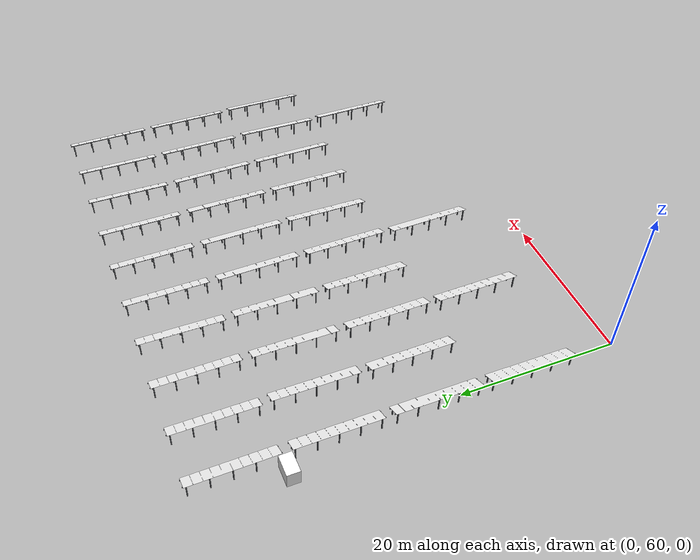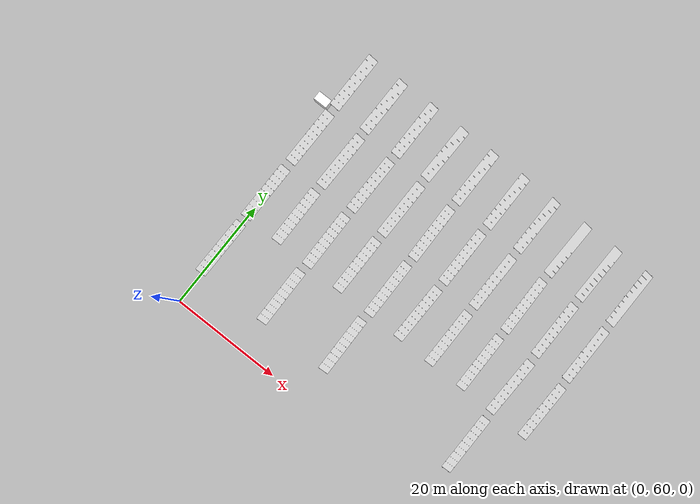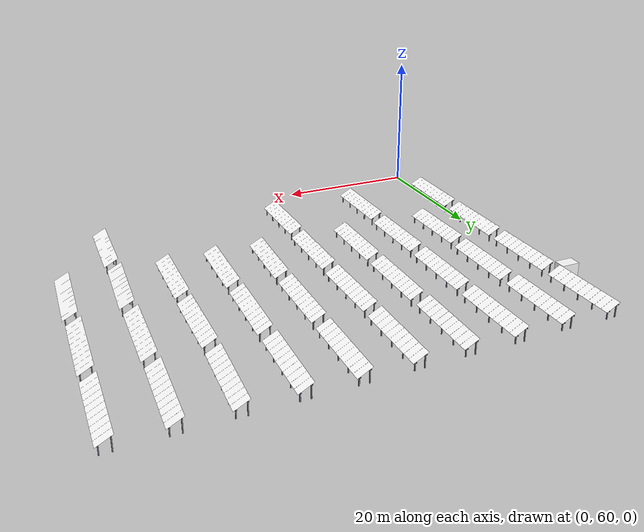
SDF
<sdf version="1.10">
 <world name="solar_farm">
  <model name="table_0006">
   <static>true</static>
   <pose>-0.049 71.330 0 0 0 -0.00557</pose>
   <link name="table">
    <collision name="glass_col">
     <pose>0 0 1.6 0 0.488692 0</pose>
     <geometry><box><size>2.100 10.680 0.040</size></box></geometry>
    </collision>
    <visual name="glass">
     <pose>0 0 1.6 0 0.488692 0</pose>
     <geometry><mesh><uri>model://solar_farm_assets/meshes/pv_glass.obj</uri></mesh></geometry>
     <material>
      <ambient>0.25 0.25 0.25 1</ambient>
      <diffuse>1 1 1 1</diffuse>
      <specular>0.4 0.4 0.4 1</specular>
      <pbr>
       <metal>
        <albedo_map>model://solar_farm_assets/materials/textures/pv_atlas_04_albedo.png</albedo_map>
        <roughness_map>model://solar_farm_assets/materials/textures/pv_atlas_04_roughness.png</roughness_map>
        <normal_map>model://solar_farm_assets/materials/textures/pv_normal.png</normal_map>
        <metalness>0.1</metalness>
       </metal>
      </pbr>
     </material>
    </visual>
    <visual name="rack">
     <cast_shadows>false</cast_shadows>
     <geometry><mesh><uri>model://solar_farm_assets/meshes/pv_rack.obj</uri></mesh></geometry>
     <material>
      <ambient>0.18 0.18 0.20 1</ambient>
      <diffuse>0.40 0.41 0.43 1</diffuse>
      <specular>0.5 0.5 0.5 1</specular>
      <pbr><metal><roughness>0.45</roughness><metalness>0.85</metalness></metal></pbr>
     </material>
    </visual>
   </link>
  </model>
  <model name="table_0007">
   <static>true</static>
   <pose>-0.022 83.192 0 0 0 0.00090</pose>
   <link name="table">
    <collision name="glass_col">
     <pose>0 0 1.6 0 0.488692 0</pose>
     <geometry><box><size>2.100 10.680 0.040</size></box></geometry>
    </collision>
    <visual name="glass">
     <pose>0 0 1.6 0 0.488692 0</pose>
     <geometry><mesh><uri>model://solar_farm_assets/meshes/pv_glass.obj</uri></mesh></geometry>
     <material>
      <ambient>0.25 0.25 0.25 1</ambient>
      <diffuse>1 1 1 1</diffuse>
      <specular>0.4 0.4 0.4 1</specular>
      <pbr>
       <metal>
        <albedo_map>model://solar_farm_assets/materials/textures/pv_atlas_00_albedo.png</albedo_map>
        <roughness_map>model://solar_farm_assets/materials/textures/pv_atlas_00_roughness.png</roughness_map>
        <normal_map>model://solar_farm_assets/materials/textures/pv_normal.png</normal_map>
        <metalness>0.1</metalness>
       </metal>
      </pbr>
     </material>
    </visual>
    <visual name="rack">
     <cast_shadows>false</cast_shadows>
     <geometry><mesh><uri>model://solar_farm_assets/meshes/pv_rack.obj</uri></mesh></geometry>
     <material>
      <ambient>0.18 0.18 0.20 1</ambient>
      <diffuse>0.40 0.41 0.43 1</diffuse>
      <specular>0.5 0.5 0.5 1</specular>
      <pbr><metal><roughness>0.45</roughness><metalness>0.85</metalness></metal></pbr>
     </material>
    </visual>
   </link>
  </model>
  <model name="table_0008">
   <static>true</static>
   <pose>-0.014 95.056 0 0 0 0.00251</pose>
   <link name="table">
    <collision name="glass_col">
     <pose>0 0 1.6 0 0.488692 0</pose>
     <geometry><box><size>2.100 10.680 0.040</size></box></geometry>
    </collision>
    <visual name="glass">
     <pose>0 0 1.6 0 0.488692 0</pose>
     <geometry><mesh><uri>model://solar_farm_assets/meshes/pv_glass.obj</uri></mesh></geometry>
     <material>
      <ambient>0.25 0.25 0.25 1</ambient>
      <diffuse>1 1 1 1</diffuse>
      <specular>0.4 0.4 0.4 1</specular>
      <pbr>
       <metal>
        <albedo_map>model://solar_farm_assets/materials/textures/pv_atlas_09_albedo.png</albedo_map>
        <roughness_map>model://solar_farm_assets/materials/textures/pv_atlas_09_roughness.png</roughness_map>
        <normal_map>model://solar_farm_assets/materials/textures/pv_normal.png</normal_map>
        <metalness>0.1</metalness>
       </metal>
      </pbr>
     </material>
    </visual>
    <visual name="rack">
     <cast_shadows>false</cast_shadows>
     <geometry><mesh><uri>model://solar_farm_assets/meshes/pv_rack.obj</uri></mesh></geometry>
     <material>
      <ambient>0.18 0.18 0.20 1</ambient>
      <diffuse>0.40 0.41 0.43 1</diffuse>
      <specular>0.5 0.5 0.5 1</specular>
      <pbr><metal><roughness>0.45</roughness><metalness>0.85</metalness></metal></pbr>
     </material>
    </visual>
   </link>
  </model>
  <model name="table_0009">
   <static>true</static>
   <pose>-0.078 106.938 0 0 0 0.01003</pose>
   <link name="table">
    <collision name="glass_col">
     <pose>0 0 1.6 0 0.488692 0</pose>
     <geometry><box><size>2.100 10.680 0.040</size></box></geometry>
    </collision>
    <visual name="glass">
     <pose>0 0 1.6 0 0.488692 0</pose>
     <geometry><mesh><uri>model://solar_farm_assets/meshes/pv_glass.obj</uri></mesh></geometry>
     <material>
      <ambient>0.25 0.25 0.25 1</ambient>
      <diffuse>1 1 1 1</diffuse>
      <specular>0.4 0.4 0.4 1</specular>
      <pbr>
       <metal>
        <albedo_map>model://solar_farm_assets/materials/textures/pv_atlas_10_albedo.png</albedo_map>
        <roughness_map>model://solar_farm_assets/materials/textures/pv_atlas_10_roughness.png</roughness_map>
        <normal_map>model://solar_farm_assets/materials/textures/pv_normal.png</normal_map>
        <metalness>0.1</metalness>
       </metal>
      </pbr>
     </material>
    </visual>
    <visual name="rack">
     <cast_shadows>false</cast_shadows>
     <geometry><mesh><uri>model://solar_farm_assets/meshes/pv_rack.obj</uri></mesh></geometry>
     <material>
      <ambient>0.18 0.18 0.20 1</ambient>
      <diffuse>0.40 0.41 0.43 1</diffuse>
      <specular>0.5 0.5 0.5 1</specular>
      <pbr><metal><roughness>0.45</roughness><metalness>0.85</metalness></metal></pbr>
     </material>
    </visual>
   </link>
  </model>
  <model name="table_0017">
   <static>true</static>
   <pose>6.461 83.219 0 0 0 0.01231</pose>
   <link name="table">
    <collision name="glass_col">
     <pose>0 0 1.6 0 0.488692 0</pose>
     <geometry><box><size>2.100 10.680 0.040</size></box></geometry>
    </collision>
    <visual name="glass">
     <pose>0 0 1.6 0 0.488692 0</pose>
     <geometry><mesh><uri>model://solar_farm_assets/meshes/pv_glass.obj</uri></mesh></geometry>
     <material>
      <ambient>0.25 0.25 0.25 1</ambient>
      <diffuse>1 1 1 1</diffuse>
      <specular>0.4 0.4 0.4 1</specular>
      <pbr>
       <metal>
        <albedo_map>model://solar_farm_assets/materials/textures/pv_atlas_02_albedo.png</albedo_map>
        <roughness_map>model://solar_farm_assets/materials/textures/pv_atlas_02_roughness.png</roughness_map>
        <normal_map>model://solar_farm_assets/materials/textures/pv_normal.png</normal_map>
        <metalness>0.1</metalness>
       </metal>
      </pbr>
     </material>
    </visual>
    <visual name="rack">
     <cast_shadows>false</cast_shadows>
     <geometry><mesh><uri>model://solar_farm_assets/meshes/pv_rack.obj</uri></mesh></geometry>
     <material>
      <ambient>0.18 0.18 0.20 1</ambient>
      <diffuse>0.40 0.41 0.43 1</diffuse>
      <specular>0.5 0.5 0.5 1</specular>
      <pbr><metal><roughness>0.45</roughness><metalness>0.85</metalness></metal></pbr>
     </material>
    </visual>
   </link>
  </model>
  <model name="table_0018">
   <static>true</static>
   <pose>6.539 95.059 0 0 0 -0.00374</pose>
   <link name="table">
    <collision name="glass_col">
     <pose>0 0 1.6 0 0.488692 0</pose>
     <geometry><box><size>2.100 10.680 0.040</size></box></geometry>
    </collision>
    <visual name="glass">
     <pose>0 0 1.6 0 0.488692 0</pose>
     <geometry><mesh><uri>model://solar_farm_assets/meshes/pv_glass.obj</uri></mesh></geometry>
     <material>
      <ambient>0.25 0.25 0.25 1</ambient>
      <diffuse>1 1 1 1</diffuse>
      <specular>0.4 0.4 0.4 1</specular>
      <pbr>
       <metal>
        <albedo_map>model://solar_farm_assets/materials/textures/pv_atlas_19_albedo.png</albedo_map>
        <roughness_map>model://solar_farm_assets/materials/textures/pv_atlas_19_roughness.png</roughness_map>
        <normal_map>model://solar_farm_assets/materials/textures/pv_normal.png</normal_map>
        <metalness>0.1</metalness>
       </metal>
      </pbr>
     </material>
    </visual>
    <visual name="rack">
     <cast_shadows>false</cast_shadows>
     <geometry><mesh><uri>model://solar_farm_assets/meshes/pv_rack.obj</uri></mesh></geometry>
     <material>
      <ambient>0.18 0.18 0.20 1</ambient>
      <diffuse>0.40 0.41 0.43 1</diffuse>
      <specular>0.5 0.5 0.5 1</specular>
      <pbr><metal><roughness>0.45</roughness><metalness>0.85</metalness></metal></pbr>
     </material>
    </visual>
   </link>
  </model>
  <model name="table_0019">
   <static>true</static>
   <pose>6.405 106.849 0 0 0 0.00211</pose>
   <link name="table">
    <collision name="glass_col">
     <pose>0 0 1.6 0 0.488692 0</pose>
     <geometry><box><size>2.100 10.680 0.040</size></box></geometry>
    </collision>
    <visual name="glass">
     <pose>0 0 1.6 0 0.488692 0</pose>
     <geometry><mesh><uri>model://solar_farm_assets/meshes/pv_glass.obj</uri></mesh></geometry>
     <material>
      <ambient>0.25 0.25 0.25 1</ambient>
      <diffuse>1 1 1 1</diffuse>
      <specular>0.4 0.4 0.4 1</specular>
      <pbr>
       <metal>
        <albedo_map>model://solar_farm_assets/materials/textures/pv_atlas_15_albedo.png</albedo_map>
        <roughness_map>model://solar_farm_assets/materials/textures/pv_atlas_15_roughness.png</roughness_map>
        <normal_map>model://solar_farm_assets/materials/textures/pv_normal.png</normal_map>
        <metalness>0.1</metalness>
       </metal>
      </pbr>
     </material>
    </visual>
    <visual name="rack">
     <cast_shadows>false</cast_shadows>
     <geometry><mesh><uri>model://solar_farm_assets/meshes/pv_rack.obj</uri></mesh></geometry>
     <material>
      <ambient>0.18 0.18 0.20 1</ambient>
      <diffuse>0.40 0.41 0.43 1</diffuse>
      <specular>0.5 0.5 0.5 1</specular>
      <pbr><metal><roughness>0.45</roughness><metalness>0.85</metalness></metal></pbr>
     </material>
    </visual>
   </link>
  </model>
  <model name="table_0026">
   <static>true</static>
   <pose>12.920 71.297 0 0 0 0.01372</pose>
   <link name="table">
    <collision name="glass_col">
     <pose>0 0 1.6 0 0.488692 0</pose>
     <geometry><box><size>2.100 10.680 0.040</size></box></geometry>
    </collision>
    <visual name="glass">
     <pose>0 0 1.6 0 0.488692 0</pose>
     <geometry><mesh><uri>model://solar_farm_assets/meshes/pv_glass.obj</uri></mesh></geometry>
     <material>
      <ambient>0.25 0.25 0.25 1</ambient>
      <diffuse>1 1 1 1</diffuse>
      <specular>0.4 0.4 0.4 1</specular>
      <pbr>
       <metal>
        <albedo_map>model://solar_farm_assets/materials/textures/pv_atlas_10_albedo.png</albedo_map>
        <roughness_map>model://solar_farm_assets/materials/textures/pv_atlas_10_roughness.png</roughness_map>
        <normal_map>model://solar_farm_assets/materials/textures/pv_normal.png</normal_map>
        <metalness>0.1</metalness>
       </metal>
      </pbr>
     </material>
    </visual>
    <visual name="rack">
     <cast_shadows>false</cast_shadows>
     <geometry><mesh><uri>model://solar_farm_assets/meshes/pv_rack.obj</uri></mesh></geometry>
     <material>
      <ambient>0.18 0.18 0.20 1</ambient>
      <diffuse>0.40 0.41 0.43 1</diffuse>
      <specular>0.5 0.5 0.5 1</specular>
      <pbr><metal><roughness>0.45</roughness><metalness>0.85</metalness></metal></pbr>
     </material>
    </visual>
   </link>
  </model>
  <model name="table_0027">
   <static>true</static>
   <pose>12.981 83.192 0 0 0 0.01291</pose>
   <link name="table">
    <collision name="glass_col">
     <pose>0 0 1.6 0 0.488692 0</pose>
     <geometry><box><size>2.100 10.680 0.040</size></box></geometry>
    </collision>
    <visual name="glass">
     <pose>0 0 1.6 0 0.488692 0</pose>
     <geometry><mesh><uri>model://solar_farm_assets/meshes/pv_glass.obj</uri></mesh></geometry>
     <material>
      <ambient>0.25 0.25 0.25 1</ambient>
      <diffuse>1 1 1 1</diffuse>
      <specular>0.4 0.4 0.4 1</specular>
      <pbr>
       <metal>
        <albedo_map>model://solar_farm_assets/materials/textures/pv_atlas_19_albedo.png</albedo_map>
        <roughness_map>model://solar_farm_assets/materials/textures/pv_atlas_19_roughness.png</roughness_map>
        <normal_map>model://solar_farm_assets/materials/textures/pv_normal.png</normal_map>
        <metalness>0.1</metalness>
       </metal>
      </pbr>
     </material>
    </visual>
    <visual name="rack">
     <cast_shadows>false</cast_shadows>
     <geometry><mesh><uri>model://solar_farm_assets/meshes/pv_rack.obj</uri></mesh></geometry>
     <material>
      <ambient>0.18 0.18 0.20 1</ambient>
      <diffuse>0.40 0.41 0.43 1</diffuse>
      <specular>0.5 0.5 0.5 1</specular>
      <pbr><metal><roughness>0.45</roughness><metalness>0.85</metalness></metal></pbr>
     </material>
    </visual>
   </link>
  </model>
  <model name="table_0028">
   <static>true</static>
   <pose>12.994 95.047 0 0 0 0.00016</pose>
   <link name="table">
    <collision name="glass_col">
     <pose>0 0 1.6 0 0.488692 0</pose>
     <geometry><box><size>2.100 10.680 0.040</size></box></geometry>
    </collision>
    <visual name="glass">
     <pose>0 0 1.6 0 0.488692 0</pose>
     <geometry><mesh><uri>model://solar_farm_assets/meshes/pv_glass.obj</uri></mesh></geometry>
     <material>
      <ambient>0.25 0.25 0.25 1</ambient>
      <diffuse>1 1 1 1</diffuse>
      <specular>0.4 0.4 0.4 1</specular>
      <pbr>
       <metal>
        <albedo_map>model://solar_farm_assets/materials/textures/pv_atlas_13_albedo.png</albedo_map>
        <roughness_map>model://solar_farm_assets/materials/textures/pv_atlas_13_roughness.png</roughness_map>
        <normal_map>model://solar_farm_assets/materials/textures/pv_normal.png</normal_map>
        <metalness>0.1</metalness>
       </metal>
      </pbr>
     </material>
    </visual>
    <visual name="rack">
     <cast_shadows>false</cast_shadows>
     <geometry><mesh><uri>model://solar_farm_assets/meshes/pv_rack.obj</uri></mesh></geometry>
     <material>
      <ambient>0.18 0.18 0.20 1</ambient>
      <diffuse>0.40 0.41 0.43 1</diffuse>
      <specular>0.5 0.5 0.5 1</specular>
      <pbr><metal><roughness>0.45</roughness><metalness>0.85</metalness></metal></pbr>
     </material>
    </visual>
   </link>
  </model>
  <model name="table_0029">
   <static>true</static>
   <pose>13.030 106.926 0 0 0 0.00944</pose>
   <link name="table">
    <collision name="glass_col">
     <pose>0 0 1.6 0 0.488692 0</pose>
     <geometry><box><size>2.100 10.680 0.040</size></box></geometry>
    </collision>
    <visual name="glass">
     <pose>0 0 1.6 0 0.488692 0</pose>
     <geometry><mesh><uri>model://solar_farm_assets/meshes/pv_glass.obj</uri></mesh></geometry>
     <material>
      <ambient>0.25 0.25 0.25 1</ambient>
      <diffuse>1 1 1 1</diffuse>
      <specular>0.4 0.4 0.4 1</specular>
      <pbr>
       <metal>
        <albedo_map>model://solar_farm_assets/materials/textures/pv_atlas_03_albedo.png</albedo_map>
        <roughness_map>model://solar_farm_assets/materials/textures/pv_atlas_03_roughness.png</roughness_map>
        <normal_map>model://solar_farm_assets/materials/textures/pv_normal.png</normal_map>
        <metalness>0.1</metalness>
       </metal>
      </pbr>
     </material>
    </visual>
    <visual name="rack">
     <cast_shadows>false</cast_shadows>
     <geometry><mesh><uri>model://solar_farm_assets/meshes/pv_rack.obj</uri></mesh></geometry>
     <material>
      <ambient>0.18 0.18 0.20 1</ambient>
      <diffuse>0.40 0.41 0.43 1</diffuse>
      <specular>0.5 0.5 0.5 1</specular>
      <pbr><metal><roughness>0.45</roughness><metalness>0.85</metalness></metal></pbr>
     </material>
    </visual>
   </link>
  </model>
  <model name="table_0037">
   <static>true</static>
   <pose>19.538 83.201 0 0 0 0.00400</pose>
   <link name="table">
    <collision name="glass_col">
     <pose>0 0 1.6 0 0.488692 0</pose>
     <geometry><box><size>2.100 10.680 0.040</size></box></geometry>
    </collision>
    <visual name="glass">
     <pose>0 0 1.6 0 0.488692 0</pose>
     <geometry><mesh><uri>model://solar_farm_assets/meshes/pv_glass.obj</uri></mesh></geometry>
     <material>
      <ambient>0.25 0.25 0.25 1</ambient>
      <diffuse>1 1 1 1</diffuse>
      <specular>0.4 0.4 0.4 1</specular>
      <pbr>
       <metal>
        <albedo_map>model://solar_farm_assets/materials/textures/pv_atlas_09_albedo.png</albedo_map>
        <roughness_map>model://solar_farm_assets/materials/textures/pv_atlas_09_roughness.png</roughness_map>
        <normal_map>model://solar_farm_assets/materials/textures/pv_normal.png</normal_map>
        <metalness>0.1</metalness>
       </metal>
      </pbr>
     </material>
    </visual>
    <visual name="rack">
     <cast_shadows>false</cast_shadows>
     <geometry><mesh><uri>model://solar_farm_assets/meshes/pv_rack.obj</uri></mesh></geometry>
     <material>
      <ambient>0.18 0.18 0.20 1</ambient>
      <diffuse>0.40 0.41 0.43 1</diffuse>
      <specular>0.5 0.5 0.5 1</specular>
      <pbr><metal><roughness>0.45</roughness><metalness>0.85</metalness></metal></pbr>
     </material>
    </visual>
   </link>
  </model>
  <model name="table_0038">
   <static>true</static>
   <pose>19.542 95.015 0 0 0 -0.00127</pose>
   <link name="table">
    <collision name="glass_col">
     <pose>0 0 1.6 0 0.488692 0</pose>
     <geometry><box><size>2.100 10.680 0.040</size></box></geometry>
    </collision>
    <visual name="glass">
     <pose>0 0 1.6 0 0.488692 0</pose>
     <geometry><mesh><uri>model://solar_farm_assets/meshes/pv_glass.obj</uri></mesh></geometry>
     <material>
      <ambient>0.25 0.25 0.25 1</ambient>
      <diffuse>1 1 1 1</diffuse>
      <specular>0.4 0.4 0.4 1</specular>
      <pbr>
       <metal>
        <albedo_map>model://solar_farm_assets/materials/textures/pv_atlas_16_albedo.png</albedo_map>
        <roughness_map>model://solar_farm_assets/materials/textures/pv_atlas_16_roughness.png</roughness_map>
        <normal_map>model://solar_farm_assets/materials/textures/pv_normal.png</normal_map>
        <metalness>0.1</metalness>
       </metal>
      </pbr>
     </material>
    </visual>
    <visual name="rack">
     <cast_shadows>false</cast_shadows>
     <geometry><mesh><uri>model://solar_farm_assets/meshes/pv_rack.obj</uri></mesh></geometry>
     <material>
      <ambient>0.18 0.18 0.20 1</ambient>
      <diffuse>0.40 0.41 0.43 1</diffuse>
      <specular>0.5 0.5 0.5 1</specular>
      <pbr><metal><roughness>0.45</roughness><metalness>0.85</metalness></metal></pbr>
     </material>
    </visual>
   </link>
  </model>
  <model name="table_0039">
   <static>true</static>
   <pose>19.463 106.886 0 0 0 -0.00987</pose>
   <link name="table">
    <collision name="glass_col">
     <pose>0 0 1.6 0 0.488692 0</pose>
     <geometry><box><size>2.100 10.680 0.040</size></box></geometry>
    </collision>
    <visual name="glass">
     <pose>0 0 1.6 0 0.488692 0</pose>
     <geometry><mesh><uri>model://solar_farm_assets/meshes/pv_glass.obj</uri></mesh></geometry>
     <material>
      <ambient>0.25 0.25 0.25 1</ambient>
      <diffuse>1 1 1 1</diffuse>
      <specular>0.4 0.4 0.4 1</specular>
      <pbr>
       <metal>
        <albedo_map>model://solar_farm_assets/materials/textures/pv_atlas_02_albedo.png</albedo_map>
        <roughness_map>model://solar_farm_assets/materials/textures/pv_atlas_02_roughness.png</roughness_map>
        <normal_map>model://solar_farm_assets/materials/textures/pv_normal.png</normal_map>
        <metalness>0.1</metalness>
       </metal>
      </pbr>
     </material>
    </visual>
    <visual name="rack">
     <cast_shadows>false</cast_shadows>
     <geometry><mesh><uri>model://solar_farm_assets/meshes/pv_rack.obj</uri></mesh></geometry>
     <material>
      <ambient>0.18 0.18 0.20 1</ambient>
      <diffuse>0.40 0.41 0.43 1</diffuse>
      <specular>0.5 0.5 0.5 1</specular>
      <pbr><metal><roughness>0.45</roughness><metalness>0.85</metalness></metal></pbr>
     </material>
    </visual>
   </link>
  </model>
  <model name="table_0046">
   <static>true</static>
   <pose>25.970 71.341 0 0 0 0.01737</pose>
   <link name="table">
    <collision name="glass_col">
     <pose>0 0 1.6 0 0.488692 0</pose>
     <geometry><box><size>2.100 10.680 0.040</size></box></geometry>
    </collision>
    <visual name="glass">
     <pose>0 0 1.6 0 0.488692 0</pose>
     <geometry><mesh><uri>model://solar_farm_assets/meshes/pv_glass.obj</uri></mesh></geometry>
     <material>
      <ambient>0.25 0.25 0.25 1</ambient>
      <diffuse>1 1 1 1</diffuse>
      <specular>0.4 0.4 0.4 1</specular>
      <pbr>
       <metal>
        <albedo_map>model://solar_farm_assets/materials/textures/pv_atlas_14_albedo.png</albedo_map>
        <roughness_map>model://solar_farm_assets/materials/textures/pv_atlas_14_roughness.png</roughness_map>
        <normal_map>model://solar_farm_assets/materials/textures/pv_normal.png</normal_map>
        <metalness>0.1</metalness>
       </metal>
      </pbr>
     </material>
    </visual>
    <visual name="rack">
     <cast_shadows>false</cast_shadows>
     <geometry><mesh><uri>model://solar_farm_assets/meshes/pv_rack.obj</uri></mesh></geometry>
     <material>
      <ambient>0.18 0.18 0.20 1</ambient>
      <diffuse>0.40 0.41 0.43 1</diffuse>
      <specular>0.5 0.5 0.5 1</specular>
      <pbr><metal><roughness>0.45</roughness><metalness>0.85</metalness></metal></pbr>
     </material>
    </visual>
   </link>
  </model>
  <model name="table_0047">
   <static>true</static>
   <pose>26.081 83.234 0 0 0 0.01050</pose>
   <link name="table">
    <collision name="glass_col">
     <pose>0 0 1.6 0 0.488692 0</pose>
     <geometry><box><size>2.100 10.680 0.040</size></box></geometry>
    </collision>
    <visual name="glass">
     <pose>0 0 1.6 0 0.488692 0</pose>
     <geometry><mesh><uri>model://solar_farm_assets/meshes/pv_glass.obj</uri></mesh></geometry>
     <material>
      <ambient>0.25 0.25 0.25 1</ambient>
      <diffuse>1 1 1 1</diffuse>
      <specular>0.4 0.4 0.4 1</specular>
      <pbr>
       <metal>
        <albedo_map>model://solar_farm_assets/materials/textures/pv_atlas_04_albedo.png</albedo_map>
        <roughness_map>model://solar_farm_assets/materials/textures/pv_atlas_04_roughness.png</roughness_map>
        <normal_map>model://solar_farm_assets/materials/textures/pv_normal.png</normal_map>
        <metalness>0.1</metalness>
       </metal>
      </pbr>
     </material>
    </visual>
    <visual name="rack">
     <cast_shadows>false</cast_shadows>
     <geometry><mesh><uri>model://solar_farm_assets/meshes/pv_rack.obj</uri></mesh></geometry>
     <material>
      <ambient>0.18 0.18 0.20 1</ambient>
      <diffuse>0.40 0.41 0.43 1</diffuse>
      <specular>0.5 0.5 0.5 1</specular>
      <pbr><metal><roughness>0.45</roughness><metalness>0.85</metalness></metal></pbr>
     </material>
    </visual>
   </link>
  </model>
  <model name="table_0048">
   <static>true</static>
   <pose>26.002 95.064 0 0 0 0.01960</pose>
   <link name="table">
    <collision name="glass_col">
     <pose>0 0 1.6 0 0.488692 0</pose>
     <geometry><box><size>2.100 10.680 0.040</size></box></geometry>
    </collision>
    <visual name="glass">
     <pose>0 0 1.6 0 0.488692 0</pose>
     <geometry><mesh><uri>model://solar_farm_assets/meshes/pv_glass.obj</uri></mesh></geometry>
     <material>
      <ambient>0.25 0.25 0.25 1</ambient>
      <diffuse>1 1 1 1</diffuse>
      <specular>0.4 0.4 0.4 1</specular>
      <pbr>
       <metal>
        <albedo_map>model://solar_farm_assets/materials/textures/pv_atlas_16_albedo.png</albedo_map>
        <roughness_map>model://solar_farm_assets/materials/textures/pv_atlas_16_roughness.png</roughness_map>
        <normal_map>model://solar_farm_assets/materials/textures/pv_normal.png</normal_map>
        <metalness>0.1</metalness>
       </metal>
      </pbr>
     </material>
    </visual>
    <visual name="rack">
     <cast_shadows>false</cast_shadows>
     <geometry><mesh><uri>model://solar_farm_assets/meshes/pv_rack.obj</uri></mesh></geometry>
     <material>
      <ambient>0.18 0.18 0.20 1</ambient>
      <diffuse>0.40 0.41 0.43 1</diffuse>
      <specular>0.5 0.5 0.5 1</specular>
      <pbr><metal><roughness>0.45</roughness><metalness>0.85</metalness></metal></pbr>
     </material>
    </visual>
   </link>
  </model>
  <model name="table_0049">
   <static>true</static>
   <pose>25.934 106.920 0 0 0 0.00487</pose>
   <link name="table">
    <collision name="glass_col">
     <pose>0 0 1.6 0 0.488692 0</pose>
     <geometry><box><size>2.100 10.680 0.040</size></box></geometry>
    </collision>
    <visual name="glass">
     <pose>0 0 1.6 0 0.488692 0</pose>
     <geometry><mesh><uri>model://solar_farm_assets/meshes/pv_glass.obj</uri></mesh></geometry>
     <material>
      <ambient>0.25 0.25 0.25 1</ambient>
      <diffuse>1 1 1 1</diffuse>
      <specular>0.4 0.4 0.4 1</specular>
      <pbr>
       <metal>
        <albedo_map>model://solar_farm_assets/materials/textures/pv_atlas_11_albedo.png</albedo_map>
        <roughness_map>model://solar_farm_assets/materials/textures/pv_atlas_11_roughness.png</roughness_map>
        <normal_map>model://solar_farm_assets/materials/textures/pv_normal.png</normal_map>
        <metalness>0.1</metalness>
       </metal>
      </pbr>
     </material>
    </visual>
    <visual name="rack">
     <cast_shadows>false</cast_shadows>
     <geometry><mesh><uri>model://solar_farm_assets/meshes/pv_rack.obj</uri></mesh></geometry>
     <material>
      <ambient>0.18 0.18 0.20 1</ambient>
      <diffuse>0.40 0.41 0.43 1</diffuse>
      <specular>0.5 0.5 0.5 1</specular>
      <pbr><metal><roughness>0.45</roughness><metalness>0.85</metalness></metal></pbr>
     </material>
    </visual>
   </link>
  </model>
  <model name="table_0057">
   <static>true</static>
   <pose>32.499 83.208 0 0 0 -0.01624</pose>
   <link name="table">
    <collision name="glass_col">
     <pose>0 0 1.6 0 0.488692 0</pose>
     <geometry><box><size>2.100 10.680 0.040</size></box></geometry>
    </collision>
    <visual name="glass">
     <pose>0 0 1.6 0 0.488692 0</pose>
     <geometry><mesh><uri>model://solar_farm_assets/meshes/pv_glass.obj</uri></mesh></geometry>
     <material>
      <ambient>0.25 0.25 0.25 1</ambient>
      <diffuse>1 1 1 1</diffuse>
      <specular>0.4 0.4 0.4 1</specular>
      <pbr>
       <metal>
        <albedo_map>model://solar_farm_assets/materials/textures/pv_atlas_06_albedo.png</albedo_map>
        <roughness_map>model://solar_farm_assets/materials/textures/pv_atlas_06_roughness.png</roughness_map>
        <normal_map>model://solar_farm_assets/materials/textures/pv_normal.png</normal_map>
        <metalness>0.1</metalness>
       </metal>
      </pbr>
     </material>
    </visual>
    <visual name="rack">
     <cast_shadows>false</cast_shadows>
     <geometry><mesh><uri>model://solar_farm_assets/meshes/pv_rack.obj</uri></mesh></geometry>
     <material>
      <ambient>0.18 0.18 0.20 1</ambient>
      <diffuse>0.40 0.41 0.43 1</diffuse>
      <specular>0.5 0.5 0.5 1</specular>
      <pbr><metal><roughness>0.45</roughness><metalness>0.85</metalness></metal></pbr>
     </material>
    </visual>
   </link>
  </model>
  <model name="table_0058">
   <static>true</static>
   <pose>32.541 95.049 0 0 0 0.00620</pose>
   <link name="table">
    <collision name="glass_col">
     <pose>0 0 1.6 0 0.488692 0</pose>
     <geometry><box><size>2.100 10.680 0.040</size></box></geometry>
    </collision>
    <visual name="glass">
     <pose>0 0 1.6 0 0.488692 0</pose>
     <geometry><mesh><uri>model://solar_farm_assets/meshes/pv_glass.obj</uri></mesh></geometry>
     <material>
      <ambient>0.25 0.25 0.25 1</ambient>
      <diffuse>1 1 1 1</diffuse>
      <specular>0.4 0.4 0.4 1</specular>
      <pbr>
       <metal>
        <albedo_map>model://solar_farm_assets/materials/textures/pv_atlas_02_albedo.png</albedo_map>
        <roughness_map>model://solar_farm_assets/materials/textures/pv_atlas_02_roughness.png</roughness_map>
        <normal_map>model://solar_farm_assets/materials/textures/pv_normal.png</normal_map>
        <metalness>0.1</metalness>
       </metal>
      </pbr>
     </material>
    </visual>
    <visual name="rack">
     <cast_shadows>false</cast_shadows>
     <geometry><mesh><uri>model://solar_farm_assets/meshes/pv_rack.obj</uri></mesh></geometry>
     <material>
      <ambient>0.18 0.18 0.20 1</ambient>
      <diffuse>0.40 0.41 0.43 1</diffuse>
      <specular>0.5 0.5 0.5 1</specular>
      <pbr><metal><roughness>0.45</roughness><metalness>0.85</metalness></metal></pbr>
     </material>
    </visual>
   </link>
  </model>
  <model name="table_0059">
   <static>true</static>
   <pose>32.508 106.960 0 0 0 0.00658</pose>
   <link name="table">
    <collision name="glass_col">
     <pose>0 0 1.6 0 0.488692 0</pose>
     <geometry><box><size>2.100 10.680 0.040</size></box></geometry>
    </collision>
    <visual name="glass">
     <pose>0 0 1.6 0 0.488692 0</pose>
     <geometry><mesh><uri>model://solar_farm_assets/meshes/pv_glass.obj</uri></mesh></geometry>
     <material>
      <ambient>0.25 0.25 0.25 1</ambient>
      <diffuse>1 1 1 1</diffuse>
      <specular>0.4 0.4 0.4 1</specular>
      <pbr>
       <metal>
        <albedo_map>model://solar_farm_assets/materials/textures/pv_atlas_01_albedo.png</albedo_map>
        <roughness_map>model://solar_farm_assets/materials/textures/pv_atlas_01_roughness.png</roughness_map>
        <normal_map>model://solar_farm_assets/materials/textures/pv_normal.png</normal_map>
        <metalness>0.1</metalness>
       </metal>
      </pbr>
     </material>
    </visual>
    <visual name="rack">
     <cast_shadows>false</cast_shadows>
     <geometry><mesh><uri>model://solar_farm_assets/meshes/pv_rack.obj</uri></mesh></geometry>
     <material>
      <ambient>0.18 0.18 0.20 1</ambient>
      <diffuse>0.40 0.41 0.43 1</diffuse>
      <specular>0.5 0.5 0.5 1</specular>
      <pbr><metal><roughness>0.45</roughness><metalness>0.85</metalness></metal></pbr>
     </material>
    </visual>
   </link>
  </model>
  <model name="table_0067">
   <static>true</static>
   <pose>39.007 83.119 0 0 0 -0.00028</pose>
   <link name="table">
    <collision name="glass_col">
     <pose>0 0 1.6 0 0.488692 0</pose>
     <geometry><box><size>2.100 10.680 0.040</size></box></geometry>
    </collision>
    <visual name="glass">
     <pose>0 0 1.6 0 0.488692 0</pose>
     <geometry><mesh><uri>model://solar_farm_assets/meshes/pv_glass.obj</uri></mesh></geometry>
     <material>
      <ambient>0.25 0.25 0.25 1</ambient>
      <diffuse>1 1 1 1</diffuse>
      <specular>0.4 0.4 0.4 1</specular>
      <pbr>
       <metal>
        <albedo_map>model://solar_farm_assets/materials/textures/pv_atlas_00_albedo.png</albedo_map>
        <roughness_map>model://solar_farm_assets/materials/textures/pv_atlas_00_roughness.png</roughness_map>
        <normal_map>model://solar_farm_assets/materials/textures/pv_normal.png</normal_map>
        <metalness>0.1</metalness>
       </metal>
      </pbr>
     </material>
    </visual>
    <visual name="rack">
     <cast_shadows>false</cast_shadows>
     <geometry><mesh><uri>model://solar_farm_assets/meshes/pv_rack.obj</uri></mesh></geometry>
     <material>
      <ambient>0.18 0.18 0.20 1</ambient>
      <diffuse>0.40 0.41 0.43 1</diffuse>
      <specular>0.5 0.5 0.5 1</specular>
      <pbr><metal><roughness>0.45</roughness><metalness>0.85</metalness></metal></pbr>
     </material>
    </visual>
   </link>
  </model>
  <model name="table_0068">
   <static>true</static>
   <pose>39.014 95.000 0 0 0 -0.00204</pose>
   <link name="table">
    <collision name="glass_col">
     <pose>0 0 1.6 0 0.488692 0</pose>
     <geometry><box><size>2.100 10.680 0.040</size></box></geometry>
    </collision>
    <visual name="glass">
     <pose>0 0 1.6 0 0.488692 0</pose>
     <geometry><mesh><uri>model://solar_farm_assets/meshes/pv_glass.obj</uri></mesh></geometry>
     <material>
      <ambient>0.25 0.25 0.25 1</ambient>
      <diffuse>1 1 1 1</diffuse>
      <specular>0.4 0.4 0.4 1</specular>
      <pbr>
       <metal>
        <albedo_map>model://solar_farm_assets/materials/textures/pv_atlas_01_albedo.png</albedo_map>
        <roughness_map>model://solar_farm_assets/materials/textures/pv_atlas_01_roughness.png</roughness_map>
        <normal_map>model://solar_farm_assets/materials/textures/pv_normal.png</normal_map>
        <metalness>0.1</metalness>
       </metal>
      </pbr>
     </material>
    </visual>
    <visual name="rack">
     <cast_shadows>false</cast_shadows>
     <geometry><mesh><uri>model://solar_farm_assets/meshes/pv_rack.obj</uri></mesh></geometry>
     <material>
      <ambient>0.18 0.18 0.20 1</ambient>
      <diffuse>0.40 0.41 0.43 1</diffuse>
      <specular>0.5 0.5 0.5 1</specular>
      <pbr><metal><roughness>0.45</roughness><metalness>0.85</metalness></metal></pbr>
     </material>
    </visual>
   </link>
  </model>
  <model name="table_0069">
   <static>true</static>
   <pose>38.978 106.947 0 0 0 -0.00229</pose>
   <link name="table">
    <collision name="glass_col">
     <pose>0 0 1.6 0 0.488692 0</pose>
     <geometry><box><size>2.100 10.680 0.040</size></box></geometry>
    </collision>
    <visual name="glass">
     <pose>0 0 1.6 0 0.488692 0</pose>
     <geometry><mesh><uri>model://solar_farm_assets/meshes/pv_glass.obj</uri></mesh></geometry>
     <material>
      <ambient>0.25 0.25 0.25 1</ambient>
      <diffuse>1 1 1 1</diffuse>
      <specular>0.4 0.4 0.4 1</specular>
      <pbr>
       <metal>
        <albedo_map>model://solar_farm_assets/materials/textures/pv_atlas_18_albedo.png</albedo_map>
        <roughness_map>model://solar_farm_assets/materials/textures/pv_atlas_18_roughness.png</roughness_map>
        <normal_map>model://solar_farm_assets/materials/textures/pv_normal.png</normal_map>
        <metalness>0.1</metalness>
       </metal>
      </pbr>
     </material>
    </visual>
    <visual name="rack">
     <cast_shadows>false</cast_shadows>
     <geometry><mesh><uri>model://solar_farm_assets/meshes/pv_rack.obj</uri></mesh></geometry>
     <material>
      <ambient>0.18 0.18 0.20 1</ambient>
      <diffuse>0.40 0.41 0.43 1</diffuse>
      <specular>0.5 0.5 0.5 1</specular>
      <pbr><metal><roughness>0.45</roughness><metalness>0.85</metalness></metal></pbr>
     </material>
    </visual>
   </link>
  </model>
  <model name="table_0077">
   <static>true</static>
   <pose>45.561 83.213 0 0 0 0.00575</pose>
   <link name="table">
    <collision name="glass_col">
     <pose>0 0 1.6 0 0.488692 0</pose>
     <geometry><box><size>2.100 10.680 0.040</size></box></geometry>
    </collision>
    <visual name="glass">
     <pose>0 0 1.6 0 0.488692 0</pose>
     <geometry><mesh><uri>model://solar_farm_assets/meshes/pv_glass.obj</uri></mesh></geometry>
     <material>
      <ambient>0.25 0.25 0.25 1</ambient>
      <diffuse>1 1 1 1</diffuse>
      <specular>0.4 0.4 0.4 1</specular>
      <pbr>
       <metal>
        <albedo_map>model://solar_farm_assets/materials/textures/pv_atlas_12_albedo.png</albedo_map>
        <roughness_map>model://solar_farm_assets/materials/textures/pv_atlas_12_roughness.png</roughness_map>
        <normal_map>model://solar_farm_assets/materials/textures/pv_normal.png</normal_map>
        <metalness>0.1</metalness>
       </metal>
      </pbr>
     </material>
    </visual>
    <visual name="rack">
     <cast_shadows>false</cast_shadows>
     <geometry><mesh><uri>model://solar_farm_assets/meshes/pv_rack.obj</uri></mesh></geometry>
     <material>
      <ambient>0.18 0.18 0.20 1</ambient>
      <diffuse>0.40 0.41 0.43 1</diffuse>
      <specular>0.5 0.5 0.5 1</specular>
      <pbr><metal><roughness>0.45</roughness><metalness>0.85</metalness></metal></pbr>
     </material>
    </visual>
   </link>
  </model>
  <model name="table_0078">
   <static>true</static>
   <pose>45.506 95.069 0 0 0 0.01574</pose>
   <link name="table">
    <collision name="glass_col">
     <pose>0 0 1.6 0 0.488692 0</pose>
     <geometry><box><size>2.100 10.680 0.040</size></box></geometry>
    </collision>
    <visual name="glass">
     <pose>0 0 1.6 0 0.488692 0</pose>
     <geometry><mesh><uri>model://solar_farm_assets/meshes/pv_glass.obj</uri></mesh></geometry>
     <material>
      <ambient>0.25 0.25 0.25 1</ambient>
      <diffuse>1 1 1 1</diffuse>
      <specular>0.4 0.4 0.4 1</specular>
      <pbr>
       <metal>
        <albedo_map>model://solar_farm_assets/materials/textures/pv_atlas_14_albedo.png</albedo_map>
        <roughness_map>model://solar_farm_assets/materials/textures/pv_atlas_14_roughness.png</roughness_map>
        <normal_map>model://solar_farm_assets/materials/textures/pv_normal.png</normal_map>
        <metalness>0.1</metalness>
       </metal>
      </pbr>
     </material>
    </visual>
    <visual name="rack">
     <cast_shadows>false</cast_shadows>
     <geometry><mesh><uri>model://solar_farm_assets/meshes/pv_rack.obj</uri></mesh></geometry>
     <material>
      <ambient>0.18 0.18 0.20 1</ambient>
      <diffuse>0.40 0.41 0.43 1</diffuse>
      <specular>0.5 0.5 0.5 1</specular>
      <pbr><metal><roughness>0.45</roughness><metalness>0.85</metalness></metal></pbr>
     </material>
    </visual>
   </link>
  </model>
  <model name="table_0079">
   <static>true</static>
   <pose>45.545 106.936 0 0 0 -0.01987</pose>
   <link name="table">
    <collision name="glass_col">
     <pose>0 0 1.6 0 0.488692 0</pose>
     <geometry><box><size>2.100 10.680 0.040</size></box></geometry>
    </collision>
    <visual name="glass">
     <pose>0 0 1.6 0 0.488692 0</pose>
     <geometry><mesh><uri>model://solar_farm_assets/meshes/pv_glass.obj</uri></mesh></geometry>
     <material>
      <ambient>0.25 0.25 0.25 1</ambient>
      <diffuse>1 1 1 1</diffuse>
      <specular>0.4 0.4 0.4 1</specular>
      <pbr>
       <metal>
        <albedo_map>model://solar_farm_assets/materials/textures/pv_atlas_09_albedo.png</albedo_map>
        <roughness_map>model://solar_farm_assets/materials/textures/pv_atlas_09_roughness.png</roughness_map>
        <normal_map>model://solar_farm_assets/materials/textures/pv_normal.png</normal_map>
        <metalness>0.1</metalness>
       </metal>
      </pbr>
     </material>
    </visual>
    <visual name="rack">
     <cast_shadows>false</cast_shadows>
     <geometry><mesh><uri>model://solar_farm_assets/meshes/pv_rack.obj</uri></mesh></geometry>
     <material>
      <ambient>0.18 0.18 0.20 1</ambient>
      <diffuse>0.40 0.41 0.43 1</diffuse>
      <specular>0.5 0.5 0.5 1</specular>
      <pbr><metal><roughness>0.45</roughness><metalness>0.85</metalness></metal></pbr>
     </material>
    </visual>
   </link>
  </model>
  <model name="table_0086">
   <static>true</static>
   <pose>51.989 71.305 0 0 0 -0.00357</pose>
   <link name="table">
    <collision name="glass_col">
     <pose>0 0 1.6 0 0.488692 0</pose>
     <geometry><box><size>2.100 10.680 0.040</size></box></geometry>
    </collision>
    <visual name="glass">
     <pose>0 0 1.6 0 0.488692 0</pose>
     <geometry><mesh><uri>model://solar_farm_assets/meshes/pv_glass.obj</uri></mesh></geometry>
     <material>
      <ambient>0.25 0.25 0.25 1</ambient>
      <diffuse>1 1 1 1</diffuse>
      <specular>0.4 0.4 0.4 1</specular>
      <pbr>
       <metal>
        <albedo_map>model://solar_farm_assets/materials/textures/pv_atlas_10_albedo.png</albedo_map>
        <roughness_map>model://solar_farm_assets/materials/textures/pv_atlas_10_roughness.png</roughness_map>
        <normal_map>model://solar_farm_assets/materials/textures/pv_normal.png</normal_map>
        <metalness>0.1</metalness>
       </metal>
      </pbr>
     </material>
    </visual>
    <visual name="rack">
     <cast_shadows>false</cast_shadows>
     <geometry><mesh><uri>model://solar_farm_assets/meshes/pv_rack.obj</uri></mesh></geometry>
     <material>
      <ambient>0.18 0.18 0.20 1</ambient>
      <diffuse>0.40 0.41 0.43 1</diffuse>
      <specular>0.5 0.5 0.5 1</specular>
      <pbr><metal><roughness>0.45</roughness><metalness>0.85</metalness></metal></pbr>
     </material>
    </visual>
   </link>
  </model>
  <model name="table_0087">
   <static>true</static>
   <pose>51.975 83.132 0 0 0 -0.03124</pose>
   <link name="table">
    <collision name="glass_col">
     <pose>0 0 1.6 0 0.488692 0</pose>
     <geometry><box><size>2.100 10.680 0.040</size></box></geometry>
    </collision>
    <visual name="glass">
     <pose>0 0 1.6 0 0.488692 0</pose>
     <geometry><mesh><uri>model://solar_farm_assets/meshes/pv_glass.obj</uri></mesh></geometry>
     <material>
      <ambient>0.25 0.25 0.25 1</ambient>
      <diffuse>1 1 1 1</diffuse>
      <specular>0.4 0.4 0.4 1</specular>
      <pbr>
       <metal>
        <albedo_map>model://solar_farm_assets/materials/textures/pv_atlas_08_albedo.png</albedo_map>
        <roughness_map>model://solar_farm_assets/materials/textures/pv_atlas_08_roughness.png</roughness_map>
        <normal_map>model://solar_farm_assets/materials/textures/pv_normal.png</normal_map>
        <metalness>0.1</metalness>
       </metal>
      </pbr>
     </material>
    </visual>
    <visual name="rack">
     <cast_shadows>false</cast_shadows>
     <geometry><mesh><uri>model://solar_farm_assets/meshes/pv_rack.obj</uri></mesh></geometry>
     <material>
      <ambient>0.18 0.18 0.20 1</ambient>
      <diffuse>0.40 0.41 0.43 1</diffuse>
      <specular>0.5 0.5 0.5 1</specular>
      <pbr><metal><roughness>0.45</roughness><metalness>0.85</metalness></metal></pbr>
     </material>
    </visual>
   </link>
  </model>
  <model name="table_0088">
   <static>true</static>
   <pose>51.991 95.078 0 0 0 -0.00599</pose>
   <link name="table">
    <collision name="glass_col">
     <pose>0 0 1.6 0 0.488692 0</pose>
     <geometry><box><size>2.100 10.680 0.040</size></box></geometry>
    </collision>
    <visual name="glass">
     <pose>0 0 1.6 0 0.488692 0</pose>
     <geometry><mesh><uri>model://solar_farm_assets/meshes/pv_glass.obj</uri></mesh></geometry>
     <material>
      <ambient>0.25 0.25 0.25 1</ambient>
      <diffuse>1 1 1 1</diffuse>
      <specular>0.4 0.4 0.4 1</specular>
      <pbr>
       <metal>
        <albedo_map>model://solar_farm_assets/materials/textures/pv_atlas_17_albedo.png</albedo_map>
        <roughness_map>model://solar_farm_assets/materials/textures/pv_atlas_17_roughness.png</roughness_map>
        <normal_map>model://solar_farm_assets/materials/textures/pv_normal.png</normal_map>
        <metalness>0.1</metalness>
       </metal>
      </pbr>
     </material>
    </visual>
    <visual name="rack">
     <cast_shadows>false</cast_shadows>
     <geometry><mesh><uri>model://solar_farm_assets/meshes/pv_rack.obj</uri></mesh></geometry>
     <material>
      <ambient>0.18 0.18 0.20 1</ambient>
      <diffuse>0.40 0.41 0.43 1</diffuse>
      <specular>0.5 0.5 0.5 1</specular>
      <pbr><metal><roughness>0.45</roughness><metalness>0.85</metalness></metal></pbr>
     </material>
    </visual>
   </link>
  </model>
  <model name="table_0089">
   <static>true</static>
   <pose>52.011 106.930 0 0 0 -0.01518</pose>
   <link name="table">
    <collision name="glass_col">
     <pose>0 0 1.6 0 0.488692 0</pose>
     <geometry><box><size>2.100 10.680 0.040</size></box></geometry>
    </collision>
    <visual name="glass">
     <pose>0 0 1.6 0 0.488692 0</pose>
     <geometry><mesh><uri>model://solar_farm_assets/meshes/pv_glass.obj</uri></mesh></geometry>
     <material>
      <ambient>0.25 0.25 0.25 1</ambient>
      <diffuse>1 1 1 1</diffuse>
      <specular>0.4 0.4 0.4 1</specular>
      <pbr>
       <metal>
        <albedo_map>model://solar_farm_assets/materials/textures/pv_atlas_11_albedo.png</albedo_map>
        <roughness_map>model://solar_farm_assets/materials/textures/pv_atlas_11_roughness.png</roughness_map>
        <normal_map>model://solar_farm_assets/materials/textures/pv_normal.png</normal_map>
        <metalness>0.1</metalness>
       </metal>
      </pbr>
     </material>
    </visual>
    <visual name="rack">
     <cast_shadows>false</cast_shadows>
     <geometry><mesh><uri>model://solar_farm_assets/meshes/pv_rack.obj</uri></mesh></geometry>
     <material>
      <ambient>0.18 0.18 0.20 1</ambient>
      <diffuse>0.40 0.41 0.43 1</diffuse>
      <specular>0.5 0.5 0.5 1</specular>
      <pbr><metal><roughness>0.45</roughness><metalness>0.85</metalness></metal></pbr>
     </material>
    </visual>
   </link>
  </model>
  <model name="table_0097">
   <static>true</static>
   <pose>58.547 83.189 0 0 0 -0.02075</pose>
   <link name="table">
    <collision name="glass_col">
     <pose>0 0 1.6 0 0.488692 0</pose>
     <geometry><box><size>2.100 10.680 0.040</size></box></geometry>
    </collision>
    <visual name="glass">
     <pose>0 0 1.6 0 0.488692 0</pose>
     <geometry><mesh><uri>model://solar_farm_assets/meshes/pv_glass.obj</uri></mesh></geometry>
     <material>
      <ambient>0.25 0.25 0.25 1</ambient>
      <diffuse>1 1 1 1</diffuse>
      <specular>0.4 0.4 0.4 1</specular>
      <pbr>
       <metal>
        <albedo_map>model://solar_farm_assets/materials/textures/pv_atlas_00_albedo.png</albedo_map>
        <roughness_map>model://solar_farm_assets/materials/textures/pv_atlas_00_roughness.png</roughness_map>
        <normal_map>model://solar_farm_assets/materials/textures/pv_normal.png</normal_map>
        <metalness>0.1</metalness>
       </metal>
      </pbr>
     </material>
    </visual>
    <visual name="rack">
     <cast_shadows>false</cast_shadows>
     <geometry><mesh><uri>model://solar_farm_assets/meshes/pv_rack.obj</uri></mesh></geometry>
     <material>
      <ambient>0.18 0.18 0.20 1</ambient>
      <diffuse>0.40 0.41 0.43 1</diffuse>
      <specular>0.5 0.5 0.5 1</specular>
      <pbr><metal><roughness>0.45</roughness><metalness>0.85</metalness></metal></pbr>
     </material>
    </visual>
   </link>
  </model>
  <model name="table_0098">
   <static>true</static>
   <pose>58.499 95.021 0 0 0 -0.00888</pose>
   <link name="table">
    <collision name="glass_col">
     <pose>0 0 1.6 0 0.488692 0</pose>
     <geometry><box><size>2.100 10.680 0.040</size></box></geometry>
    </collision>
    <visual name="glass">
     <pose>0 0 1.6 0 0.488692 0</pose>
     <geometry><mesh><uri>model://solar_farm_assets/meshes/pv_glass.obj</uri></mesh></geometry>
     <material>
      <ambient>0.25 0.25 0.25 1</ambient>
      <diffuse>1 1 1 1</diffuse>
      <specular>0.4 0.4 0.4 1</specular>
      <pbr>
       <metal>
        <albedo_map>model://solar_farm_assets/materials/textures/pv_atlas_06_albedo.png</albedo_map>
        <roughness_map>model://solar_farm_assets/materials/textures/pv_atlas_06_roughness.png</roughness_map>
        <normal_map>model://solar_farm_assets/materials/textures/pv_normal.png</normal_map>
        <metalness>0.1</metalness>
       </metal>
      </pbr>
     </material>
    </visual>
    <visual name="rack">
     <cast_shadows>false</cast_shadows>
     <geometry><mesh><uri>model://solar_farm_assets/meshes/pv_rack.obj</uri></mesh></geometry>
     <material>
      <ambient>0.18 0.18 0.20 1</ambient>
      <diffuse>0.40 0.41 0.43 1</diffuse>
      <specular>0.5 0.5 0.5 1</specular>
      <pbr><metal><roughness>0.45</roughness><metalness>0.85</metalness></metal></pbr>
     </material>
    </visual>
   </link>
  </model>
  <model name="table_0099">
   <static>true</static>
   <pose>58.528 106.866 0 0 0 -0.00541</pose>
   <link name="table">
    <collision name="glass_col">
     <pose>0 0 1.6 0 0.488692 0</pose>
     <geometry><box><size>2.100 10.680 0.040</size></box></geometry>
    </collision>
    <visual name="glass">
     <pose>0 0 1.6 0 0.488692 0</pose>
     <geometry><mesh><uri>model://solar_farm_assets/meshes/pv_glass.obj</uri></mesh></geometry>
     <material>
      <ambient>0.25 0.25 0.25 1</ambient>
      <diffuse>1 1 1 1</diffuse>
      <specular>0.4 0.4 0.4 1</specular>
      <pbr>
       <metal>
        <albedo_map>model://solar_farm_assets/materials/textures/pv_atlas_05_albedo.png</albedo_map>
        <roughness_map>model://solar_farm_assets/materials/textures/pv_atlas_05_roughness.png</roughness_map>
        <normal_map>model://solar_farm_assets/materials/textures/pv_normal.png</normal_map>
        <metalness>0.1</metalness>
       </metal>
      </pbr>
     </material>
    </visual>
    <visual name="rack">
     <cast_shadows>false</cast_shadows>
     <geometry><mesh><uri>model://solar_farm_assets/meshes/pv_rack.obj</uri></mesh></geometry>
     <material>
      <ambient>0.18 0.18 0.20 1</ambient>
      <diffuse>0.40 0.41 0.43 1</diffuse>
      <specular>0.5 0.5 0.5 1</specular>
      <pbr><metal><roughness>0.45</roughness><metalness>0.85</metalness></metal></pbr>
     </material>
    </visual>
   </link>
  </model>
  <model name="inverter_03">
   <static>true</static>
   <pose>-2.308 101.339 1.050 0 0 0</pose>
   <link name="link">
    <collision name="c"><geometry><box><size>2.6 1.6 2.1</size></box></geometry></collision>
    <visual name="v">
     <geometry><box><size>2.6 1.6 2.1</size></box></geometry>
     <material>
      <ambient>0.28 0.28 0.28 1</ambient>
      <diffuse>1 1 1 1</diffuse>
      <specular>0.3 0.3 0.3 1</specular>
      <pbr>
       <metal>
        <albedo_map>model://solar_farm_assets/materials/textures/inverter_albedo.png</albedo_map>
        <roughness_map>model://solar_farm_assets/materials/textures/site_roughness.png</roughness_map>
        <metalness>0.6</metalness>
       </metal>
      </pbr>
     </material>
    </visual>
   </link>
  </model>
 </world>
</sdf>
